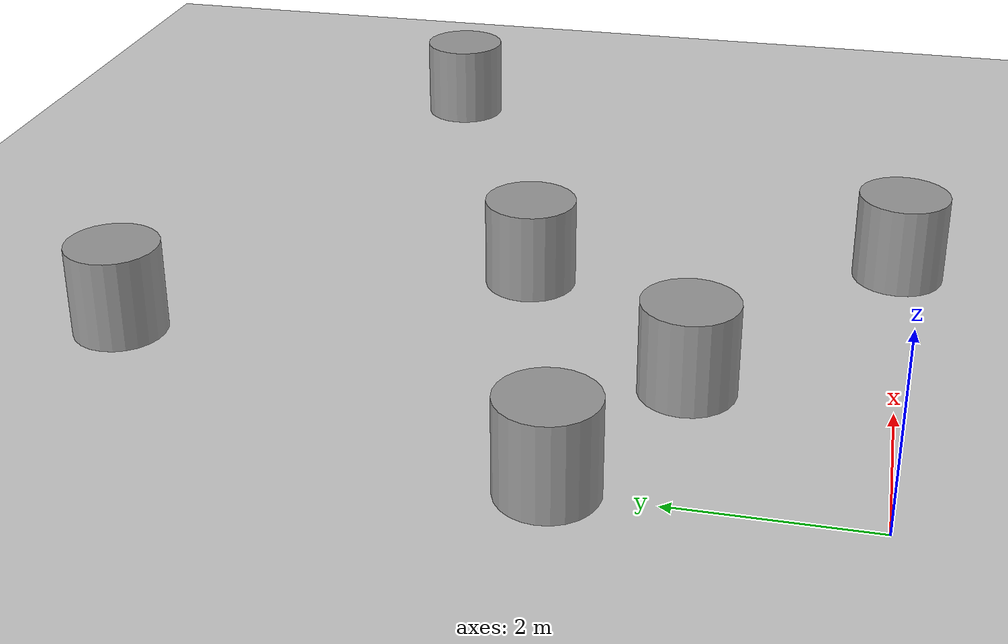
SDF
<?xml version="1.0" ?>
<sdf version="1.4">
  <world name="default">
    <include>
      <uri>model://ground_plane</uri>
    </include>
    <include>
      <uri>model://sun</uri>
    </include>
    <model name='unit_cylinder'>
      <pose>2.0 2.0 0.5 0 -0 0</pose>
      <link name='link'>
        <inertial>
          <mass>1</mass>
          <inertia>
            <ixx>0.145833</ixx>
            <ixy>0</ixy>
            <ixz>0</ixz>
            <iyy>0.145833</iyy>
            <iyz>0</iyz>
            <izz>0.125</izz>
          </inertia>
          <pose>0 0 0 0 -0 0</pose>
        </inertial>
        <collision name='collision'>
          <geometry>
            <cylinder>
              <radius>0.5</radius>
              <length>1</length>
            </cylinder>
          </geometry>
          <max_contacts>10</max_contacts>
          <surface>
            <contact>
              <ode/>
            </contact>
            <bounce/>
            <friction>
              <torsional>
                <ode/>
              </torsional>
              <ode/>
            </friction>
          </surface>
        </collision>
        <visual name='visual'>
          <geometry>
            <cylinder>
              <radius>0.5</radius>
              <length>1</length>
            </cylinder>
          </geometry>
          <material>
            <script>
              <name>Gazebo/Grey</name>
              <uri>file://media/materials/scripts/gazebo.material</uri>
            </script>
          </material>
        </visual>
        <self_collide>0</self_collide>
        <enable_wind>0</enable_wind>
        <kinematic>0</kinematic>
      </link>
    </model>
    <model name='unit_cylinder_1'>
      <pose>5.0 0.0 0.5 0 -0 0</pose>
      <link name='link'>
        <inertial>
          <mass>1</mass>
          <inertia>
            <ixx>0.145833</ixx>
            <ixy>0</ixy>
            <ixz>0</ixz>
            <iyy>0.145833</iyy>
            <iyz>0</iyz>
            <izz>0.125</izz>
          </inertia>
          <pose>0 0 0 0 -0 0</pose>
        </inertial>
        <collision name='collision'>
          <geometry>
            <cylinder>
              <radius>0.5</radius>
              <length>1</length>
            </cylinder>
          </geometry>
          <max_contacts>10</max_contacts>
          <surface>
            <contact>
              <ode/>
            </contact>
            <bounce/>
            <friction>
              <torsional>
                <ode/>
              </torsional>
              <ode/>
            </friction>
          </surface>
        </collision>
        <visual name='visual'>
          <geometry>
            <cylinder>
              <radius>0.5</radius>
              <length>1</length>
            </cylinder>
          </geometry>
          <material>
            <script>
              <name>Gazebo/Grey</name>
              <uri>file://media/materials/scripts/gazebo.material</uri>
            </script>
          </material>
        </visual>
        <self_collide>0</self_collide>
        <enable_wind>0</enable_wind>
        <kinematic>0</kinematic>
      </link>
    </model>
    <model name='unit_cylinder_2'>
      <pose>0.0 3.0 0.5 0 -0 0</pose>
      <link name='link'>
        <inertial>
          <mass>1</mass>
          <inertia>
            <ixx>0.145833</ixx>
            <ixy>0</ixy>
            <ixz>0</ixz>
            <iyy>0.145833</iyy>
            <iyz>0</iyz>
            <izz>0.125</izz>
          </inertia>
          <pose>0 0 0 0 -0 0</pose>
        </inertial>
        <collision name='collision'>
          <geometry>
            <cylinder>
              <radius>0.5</radius>
              <length>1</length>
            </cylinder>
          </geometry>
          <max_contacts>10</max_contacts>
          <surface>
            <contact>
              <ode/>
            </contact>
            <bounce/>
            <friction>
              <torsional>
                <ode/>
              </torsional>
              <ode/>
            </friction>
          </surface>
        </collision>
        <visual name='visual'>
          <geometry>
            <cylinder>
              <radius>0.5</radius>
              <length>1</length>
            </cylinder>
          </geometry>
          <material>
            <script>
              <name>Gazebo/Grey</name>
              <uri>file://media/materials/scripts/gazebo.material</uri>
            </script>
          </material>
        </visual>
        <self_collide>0</self_collide>
        <enable_wind>0</enable_wind>
        <kinematic>0</kinematic>
      </link>
    </model>
    <model name='unit_cylinder_3'>
      <pose>4.0 4.0 0.5 0 -0 0</pose>
      <link name='link'>
        <inertial>
          <mass>1</mass>
          <inertia>
            <ixx>0.145833</ixx>
            <ixy>0</ixy>
            <ixz>0</ixz>
            <iyy>0.145833</iyy>
            <iyz>0</iyz>
            <izz>0.125</izz>
          </inertia>
          <pose>0 0 0 0 -0 0</pose>
        </inertial>
        <collision name='collision'>
          <geometry>
            <cylinder>
              <radius>0.5</radius>
              <length>1</length>
            </cylinder>
          </geometry>
          <max_contacts>10</max_contacts>
          <surface>
            <contact>
              <ode/>
            </contact>
            <bounce/>
            <friction>
              <torsional>
                <ode/>
              </torsional>
              <ode/>
            </friction>
          </surface>
        </collision>
        <visual name='visual'>
          <geometry>
            <cylinder>
              <radius>0.5</radius>
              <length>1</length>
            </cylinder>
          </geometry>
          <material>
            <script>
              <name>Gazebo/Grey</name>
              <uri>file://media/materials/scripts/gazebo.material</uri>
            </script>
          </material>
        </visual>
        <self_collide>0</self_collide>
        <enable_wind>0</enable_wind>
        <kinematic>0</kinematic>
      </link>
    </model>
    <model name='unit_cylinder_4'>
      <pose>2.0 8.0 0.5 0 -0 0</pose>
      <link name='link'>
        <inertial>
          <mass>1</mass>
          <inertia>
            <ixx>0.145833</ixx>
            <ixy>0</ixy>
            <ixz>0</ixz>
            <iyy>0.145833</iyy>
            <iyz>0</iyz>
            <izz>0.125</izz>
          </inertia>
          <pose>0 0 0 0 -0 0</pose>
        </inertial>
        <collision name='collision'>
          <geometry>
            <cylinder>
              <radius>0.5</radius>
              <length>1</length>
            </cylinder>
          </geometry>
          <max_contacts>10</max_contacts>
          <surface>
            <contact>
              <ode/>
            </contact>
            <bounce/>
            <friction>
              <torsional>
                <ode/>
              </torsional>
              <ode/>
            </friction>
          </surface>
        </collision>
        <visual name='visual'>
          <geometry>
            <cylinder>
              <radius>0.5</radius>
              <length>1</length>
            </cylinder>
          </geometry>
          <material>
            <script>
              <name>Gazebo/Grey</name>
              <uri>file://media/materials/scripts/gazebo.material</uri>
            </script>
          </material>
        </visual>
        <self_collide>0</self_collide>
        <enable_wind>0</enable_wind>
        <kinematic>0</kinematic>
      </link>
    </model>
    <model name='unit_cylinder_5'>
      <pose>9.0 6.0 0.5 0 -0 0</pose>
      <link name='link'>
        <inertial>
          <mass>1</mass>
          <inertia>
            <ixx>0.145833</ixx>
            <ixy>0</ixy>
            <ixz>0</ixz>
            <iyy>0.145833</iyy>
            <iyz>0</iyz>
            <izz>0.125</izz>
          </inertia>
          <pose>0 0 0 0 -0 0</pose>
        </inertial>
        <collision name='collision'>
          <geometry>
            <cylinder>
              <radius>0.5</radius>
              <length>1</length>
            </cylinder>
          </geometry>
          <max_contacts>10</max_contacts>
          <surface>
            <contact>
              <ode/>
            </contact>
            <bounce/>
            <friction>
              <torsional>
                <ode/>
              </torsional>
              <ode/>
            </friction>
          </surface>
        </collision>
        <visual name='visual'>
          <geometry>
            <cylinder>
              <radius>0.5</radius>
              <length>1</length>
            </cylinder>
          </geometry>
          <material>
            <script>
              <name>Gazebo/Grey</name>
              <uri>file://media/materials/scripts/gazebo.material</uri>
            </script>
          </material>
        </visual>
        <self_collide>0</self_collide>
        <enable_wind>0</enable_wind>
        <kinematic>0</kinematic>
      </link>
    </model>

    <!-- Only one ROS interface plugin is required per world, as any other plugin can connect a Gazebo
         topic to a ROS topic (or vise versa). -->
    <plugin name="ros_interface_plugin" filename="librotors_gazebo_ros_interface_plugin.so"/>

    <spherical_coordinates>
      <surface_model>EARTH_WGS84</surface_model>
      <latitude_deg>47.3667</latitude_deg>
      <longitude_deg>8.5500</longitude_deg>
      <elevation>500.0</elevation>
      <heading_deg>0</heading_deg>
    </spherical_coordinates>
    <physics type='ode'>
      <ode>
        <solver>
          <type>quick</type>
          <iters>1000</iters>
          <sor>1.3</sor>
        </solver>
        <constraints>
          <cfm>0</cfm>
          <erp>0.2</erp>
          <contact_max_correcting_vel>100</contact_max_correcting_vel>
          <contact_surface_layer>0.001</contact_surface_layer>
        </constraints>
      </ode>
      <max_step_size>0.01</max_step_size>
      <real_time_factor>1</real_time_factor>
      <real_time_update_rate>100</real_time_update_rate>
      <gravity>0 0 -9.8</gravity>
    </physics>
  </world>
</sdf>
